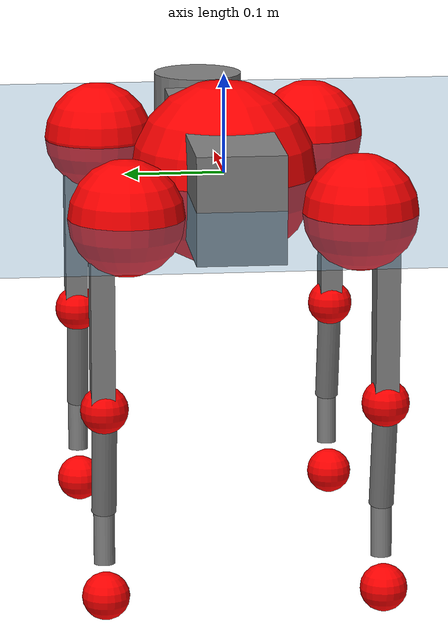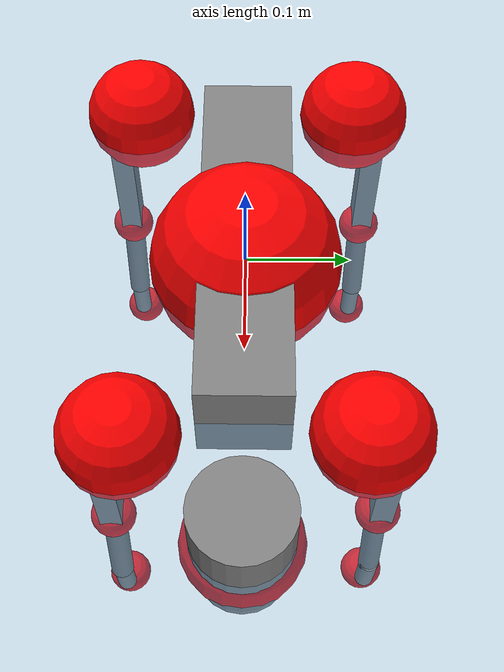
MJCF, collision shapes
<mujoco model="go2">
  <compiler angle="radian" assetdir="assets" balanceinertia="true" inertiafromgeom="false"/>

  <option timestep="0.005" density="1.2" viscosity="2e-05"/>

  <size nkey="1"/>

  <visual>
    <quality shadowsize="8192"/>
    <map shadowclip="0.5"/>
  </visual>

  <default>
    <default class="/">
      <geom contype="0" conaffinity="0" group="1" solref="-1000 -80"/>
      <site size="0.01 0.005 0.005" group="5"/>
      <general forcelimited="true" biastype="affine" gainprm="20" biasprm="0 -20 -0.5"/>
      <default class="go2">
        <joint armature="0.01" damping="0.01" frictionloss="0.2"/>
        <geom condim="1" margin="0.001"/>
        <default class="visual">
          <geom type="mesh" group="2"/>
        </default>
        <default class="collision">
          <geom group="3"/>
          <default class="foot">
            <geom size="0.022 0 0" condim="6" priority="1" friction="0.8 0.02 0.01" solimp="0.015 1 0.022"/>
          </default>
        </default>
        <default class="reward_collision_sphere">
          <geom group="5" rgba="1 0 0 1"/>
        </default>
      </default>
    </default>
  </default>

  <asset>
    <texture type="skybox" colorspace="auto" name="//unnamed_texture_0" builtin="gradient" rgb1="0.95 0.95 0.95" rgb2="0.95 0.95 0.95" width="100" height="600"/>
    <texture type="2d" colorspace="auto" name="texplane" builtin="checker" rgb1="0.345 0.575 0.748" rgb2="0.345 0.575 0.748" markrgb="1 1 1" width="512" height="512"/>
    <material name="MatPlane" class="/" texture="texplane" texuniform="true" texrepeat="2 2" specular="0.9"/>
    <material name="metal" class="/" rgba="0.9 0.95 0.95 1"/>
    <material name="black" class="/" rgba="0 0 0 1"/>
    <material name="white" class="/"/>
    <material name="gray" class="/" rgba="0.671705 0.692426 0.77427 1"/>
    <mesh name="base_0" class="/" file="base_0.obj"/>
    <mesh name="base_1" class="/" file="base_1.obj"/>
    <mesh name="base_2" class="/" file="base_2.obj"/>
    <mesh name="base_3" class="/" file="base_3.obj"/>
    <mesh name="base_4" class="/" file="base_4.obj"/>
    <mesh name="hip_0" class="/" file="hip_0.obj"/>
    <mesh name="hip_1" class="/" file="hip_1.obj"/>
    <mesh name="thigh_0" class="/" file="thigh_0.obj"/>
    <mesh name="thigh_1" class="/" file="thigh_1.obj"/>
    <mesh name="thigh_mirror_0" class="/" file="thigh_mirror_0.obj"/>
    <mesh name="thigh_mirror_1" class="/" file="thigh_mirror_1.obj"/>
    <mesh name="calf_0" class="/" file="calf_0.obj"/>
    <mesh name="calf_1" class="/" file="calf_1.obj"/>
    <mesh name="calf_mirror_0" class="/" file="calf_mirror_0.obj"/>
    <mesh name="calf_mirror_1" class="/" file="calf_mirror_1.obj"/>
    <mesh name="foot" class="/" file="foot.obj"/>
  </asset>

  <worldbody>
    <geom name="floor" class="/" size="100 100 0.125" type="plane" group="0" material="MatPlane"/>
    <light name="toplight_shadow" class="/" pos="0 0 5" dir="0.0990148 0.0990148 -0.990148" type="directional" ambient="0.04 0.04 0.04" diffuse="0.55 0.55 0.55" specular="0.12 0.12 0.12"/>
    <light name="toplight_fill" class="/" pos="0 0 5" dir="0.0990148 0.0990148 -0.990148" type="directional" castshadow="false" ambient="0.04 0.04 0.04" diffuse="0.3 0.3 0.3" specular="0.08 0.08 0.08"/>
    <body name="trunk" childclass="go2" pos="0.000148572 0.000564552 -0.000234605" quat="1 1.5798e-06 2.8968e-06 1.04891e-05">
      <inertial pos="0.0202435 0.000293739 -0.00490428" quat="0.00197386 0.716904 -0.00287903 0.697164" mass="5.72241" diaginertia="0.0925167 0.0806361 0.0128814"/>
      <joint name="//unnamed_joint_0" type="free" armature="0" damping="0" frictionloss="0"/>
      <geom name="//unnamed_geom_1" class="visual" material="black" mesh="base_0"/>
      <geom name="//unnamed_geom_2" class="visual" material="black" mesh="base_1"/>
      <geom name="//unnamed_geom_3" class="visual" material="black" mesh="base_2"/>
      <geom name="//unnamed_geom_4" class="visual" material="white" mesh="base_3"/>
      <geom name="//unnamed_geom_5" class="visual" material="gray" mesh="base_4"/>
      <geom name="trunk_1" class="collision" size="0.176036 0.0437516 0.0533442" type="box"/>
      <geom name="trunk_2" class="collision" size="0.0467932 0.0421138" pos="0.276205 0 0.00879414" type="cylinder"/>
      <geom name="trunk_3" class="collision" size="0.0439856" pos="0.283958 0 -0.0527648"/>
      <geom name="//unnamed_geom_9" class="reward_collision_sphere" size="0.0935863"/>
      <geom name="//unnamed_geom_10" class="reward_collision_sphere" size="0.0561518" pos="0.271359 0 -0.0395736"/>
      <site name="imu" pos="-0.0280617 -0.00447196 0.0400628" size="0.00935863"/>
      <camera name="track" pos="0 -1.91807 0" quat="0.707107 0.707107 0 0" mode="trackcom"/>
      <camera name="ego_camera" pos="0.302372 0 0.0395736" quat="-0.5 -0.5 0.5 0.5"/>
      <body name="FL_hip" pos="0.185931 0.0459243 0.00213004" quat="1 -0.000135634 5.16969e-05 8.669e-06">
        <inertial pos="-0.00541328 0.00207023 -0.000991684" quat="0.497234 0.499588 0.505129 0.49801" mass="0.559065" diaginertia="0.00075535 0.00048976 0.000253851"/>
        <joint name="FL_hip_joint" pos="0 0 0" axis="0.999989 -0.00384759 0.00262085" stiffness="0.00457416" range="-1.02598 1.03351" armature="0.00952475" damping="0.0049583" frictionloss="0.179166"/>
        <geom name="//unnamed_geom_11" class="visual" material="metal" mesh="hip_0"/>
        <geom name="//unnamed_geom_12" class="visual" material="gray" mesh="hip_1"/>
        <geom name="//unnamed_geom_13" class="collision" size="0.0430497 0.0187173" pos="0 0.0767227 0" quat="0.707107 0.707107 0 0" type="cylinder"/>
        <geom name="//unnamed_geom_14" class="reward_collision_sphere" size="0.0561518" pos="0 0.0671324 0"/>
        <body name="FL_thigh" pos="-0.00109007 0.0923937 0.0015755" quat="1 -0.000177699 -0.000188128 0.000371828">
          <inertial pos="-0.0047719 -0.0220931 -0.028209" quat="0.829734 0.0846213 -0.0202914 0.551333" mass="0.943723" diaginertia="0.00506104 0.00472874 0.000459748"/>
          <joint name="FL_thigh_joint" pos="0 0 0" axis="0.000577463 0.999997 -0.00254617" stiffness="0.00515084" range="-1.58407 3.50142" armature="0.00918539" damping="0.0100784" frictionloss="0.185539"/>
          <geom name="//unnamed_geom_15" class="visual" material="metal" mesh="thigh_0"/>
          <geom name="//unnamed_geom_16" class="visual" material="gray" mesh="thigh_1"/>
          <geom name="//unnamed_geom_17" class="collision" size="0.0996694 0.0114643 0.0159097" pos="0 0 -0.0936576" quat="0.707107 0 0.707107 0" type="box"/>
          <body name="FL_calf" pos="-0.00128884 -0.00117783 -0.187109" quat="1 -0.000317595 0.000190229 0.000193954">
            <inertial pos="0.00532547 -0.000569118 -0.124804" quat="0.710894 0.00200803 -0.00398512 0.703285" mass="0.197372" diaginertia="0.00128189 0.00119331 2.768e-05"/>
            <joint name="FL_calf_joint" pos="0 0 0" axis="0.00131196 0.999983 0.00567567" stiffness="0.00126475" range="-2.74045 -0.836388" armature="0.00980993" damping="0.00096155" frictionloss="0.186246"/>
            <geom name="//unnamed_geom_18" class="visual" material="gray" mesh="calf_0"/>
            <geom name="//unnamed_geom_19" class="visual" material="black" mesh="calf_1"/>
            <geom name="FL_calf0" class="collision" size="0.0112304 0.0561518" pos="0.00775313 0 -0.0527648" quat="0.994493 0 -0.104807 0" type="cylinder"/>
            <geom name="//unnamed_geom_21" class="collision" size="0.0102945 0.0304156" pos="0.0193828 0 -0.130153" quat="0.999688 0 0.0249974 0" type="cylinder"/>
            <geom name="//unnamed_geom_22" class="visual" pos="0 0 -0.187315" quat="1 0 0 0" material="black" mesh="foot"/>
            <geom name="FL_foot" class="foot" size="0.0183502" pos="-0.00193828 0 -0.187315"/>
            <geom name="//unnamed_geom_24" class="reward_collision_sphere" size="0.0233966"/>
            <geom name="//unnamed_geom_25" class="reward_collision_sphere" size="0.0233966" pos="-0.00193828 0 -0.187315"/>
            <site name="FL_foot" class="foot" pos="-0.00193828 0 -0.187315" size="0.00935863"/>
          </body>
        </body>
      </body>
      <body name="FR_hip" pos="0.188475 -0.0431108 -0.000109311" quat="1 -3.56654e-05 -0.000127309 8.6385e-05">
        <inertial pos="-0.00524639 -0.00141296 -0.000179362" quat="0.497114 0.505887 0.499093 0.497858" mass="0.554129" diaginertia="0.000751503 0.000475135 0.000250155"/>
        <joint name="FR_hip_joint" pos="0 0 0" axis="0.999983 -0.00374463 -0.00456413" stiffness="0.00581333" range="-1.04956 1.05622" armature="0.00946072" damping="0.0163672" frictionloss="0.186438"/>
        <geom name="//unnamed_geom_26" class="visual" pos="0 6.93619e-10 2.97508e-08" quat="4.63268e-05 1 0 0" material="metal" mesh="hip_0"/>
        <geom name="//unnamed_geom_27" class="visual" pos="0 1.12444e-09 -7.3585e-08" quat="4.63268e-05 1 0 0" material="gray" mesh="hip_1"/>
        <geom name="//unnamed_geom_28" class="collision" size="0.0430497 0.0187173" pos="0 -0.0767227 0" quat="0.707107 0.707107 0 0" type="cylinder"/>
        <geom name="//unnamed_geom_29" class="reward_collision_sphere" size="0.0561518" pos="0 -0.0671324 0"/>
        <body name="FR_thigh" pos="0.00129491 -0.0905344 0.00072385" quat="1 -3.74813e-05 -0.000373126 5.63077e-05">
          <inertial pos="-0.0037252 0.020672 -0.0283932" quat="0.548232 -0.0189975 0.0867845 0.831594" mass="0.931554" diaginertia="0.00504949 0.00472583 0.000462063"/>
          <joint name="FR_thigh_joint" pos="0 0 0" axis="-5.36138e-05 -1 -0.000164422" range="-3.5034 1.57167" armature="0.0093036" damping="0.015743" frictionloss="0.187675"/>
          <geom name="//unnamed_geom_30" class="visual" material="metal" mesh="thigh_mirror_0"/>
          <geom name="//unnamed_geom_31" class="visual" material="gray" mesh="thigh_mirror_1"/>
          <geom name="//unnamed_geom_32" class="collision" size="0.0996694 0.0114643 0.0159097" pos="0 0 -0.0936576" quat="0.707107 0 0.707107 0" type="box"/>
          <body name="FR_calf" pos="-0.000373002 -9.15029e-05 -0.18624" quat="1 -1.98323e-05 2.59662e-05 -2.87722e-05">
            <inertial pos="0.00552365 0.000765413 -0.125522" quat="0.703605 -0.00616155 0.00580542 0.710541" mass="0.197121" diaginertia="0.00128135 0.00118671 2.79826e-05"/>
            <joint name="FR_calf_joint" pos="0 0 0" axis="-0.00398167 -0.999985 -0.00377074" stiffness="0.000112604" range="0.843338 2.71554" armature="0.00953995" damping="0.0126036" frictionloss="0.188797"/>
            <geom name="//unnamed_geom_33" class="visual" material="gray" mesh="calf_mirror_0"/>
            <geom name="//unnamed_geom_34" class="visual" material="black" mesh="calf_mirror_1"/>
            <geom name="FR_calf0" class="collision" size="0.0121662 0.0561518" pos="0.00969141 0 -0.0527648" quat="0.995004 0 -0.0998334 0" type="cylinder"/>
            <geom name="//unnamed_geom_36" class="collision" size="0.0102945 0.0304156" pos="0.0193828 0 -0.130153" quat="0.999688 0 0.0249974 0" type="cylinder"/>
            <geom name="//unnamed_geom_37" class="visual" pos="0 0 -0.187315" quat="1 0 0 0" material="black" mesh="foot"/>
            <geom name="FR_foot" class="foot" size="0.0222963" pos="-0.00193828 0 -0.187315"/>
            <geom name="//unnamed_geom_39" class="reward_collision_sphere" size="0.0233966"/>
            <geom name="//unnamed_geom_40" class="reward_collision_sphere" size="0.0233966" pos="-0.00193828 0 -0.187315"/>
            <site name="FR_foot" class="foot" pos="-0.00193828 0 -0.187315" size="0.00935863"/>
          </body>
        </body>
      </body>
      <body name="RL_hip" pos="-0.187969 0.0442038 -0.00104298" quat="1 0.000190848 0.000121825 0.000150202">
        <inertial pos="0.00505755 0.00264053 -0.000816756" quat="0.505259 0.497225 0.497507 0.499967" mass="0.554364" diaginertia="0.000751224 0.000480974 0.000251243"/>
        <joint name="RL_hip_joint" pos="0 0 0" axis="-0.999818 -0.0185995 -0.00413138" stiffness="0.00144275" range="-1.03978 1.05809" armature="0.00936297" damping="0.014092" frictionloss="0.191709"/>
        <geom name="//unnamed_geom_41" class="visual" pos="-7.81665e-10 0 -1.53224e-07" quat="4.63268e-05 0 1 0" material="metal" mesh="hip_0"/>
        <geom name="//unnamed_geom_42" class="visual" pos="-1.26717e-09 0 -1.35888e-07" quat="4.63268e-05 0 1 0" material="gray" mesh="hip_1"/>
        <geom name="//unnamed_geom_43" class="collision" size="0.0430497 0.0187173" pos="0 0.0767227 0" quat="0.707107 0.707107 0 0" type="cylinder"/>
        <geom name="//unnamed_geom_44" class="reward_collision_sphere" size="0.0561518" pos="0 0.0671324 0"/>
        <body name="RL_thigh" pos="0.000632468 0.0911233 -0.000960002" quat="1 7.17937e-05 -0.000216124 -0.00014227">
          <inertial pos="-0.00355196 -0.0210351 -0.0291785" quat="0.828258 0.0873372 -0.0232827 0.553008" mass="0.954237" diaginertia="0.00504916 0.00470118 0.000462428"/>
          <joint name="RL_thigh_joint" pos="0 0 0" axis="0.00213565 0.999994 -0.00271226" range="-0.510951 4.52076" armature="0.00946949" damping="0.00952335" frictionloss="0.18941"/>
          <geom name="//unnamed_geom_45" class="visual" material="metal" mesh="thigh_0"/>
          <geom name="//unnamed_geom_46" class="visual" material="gray" mesh="thigh_1"/>
          <geom name="//unnamed_geom_47" class="collision" size="0.0996694 0.0114643 0.0159097" pos="0 0 -0.0936576" quat="0.707107 0 0.707107 0" type="box"/>
          <body name="RL_calf" pos="0.000790465 -0.00164966 -0.187546" quat="1 -4.86825e-06 -8.27787e-05 -0.000115528">
            <inertial pos="0.00635615 -0.000541462 -0.124483" quat="0.71042 0.000584982 -0.0036876 0.703768" mass="0.193323" diaginertia="0.00125839 0.00117774 2.76631e-05"/>
            <joint name="RL_calf_joint" pos="0 0 0" axis="-0.00971674 0.999943 -0.0043951" range="-2.70604 -0.824032" armature="0.00935649" damping="0.00102635" frictionloss="0.185354"/>
            <geom name="//unnamed_geom_48" class="visual" material="gray" mesh="calf_0"/>
            <geom name="//unnamed_geom_49" class="visual" material="black" mesh="calf_1"/>
            <geom name="RL_calf0" class="collision" size="0.0121662 0.0561518" pos="0.00969141 0 -0.0527648" quat="0.995004 0 -0.0998334 0" type="cylinder"/>
            <geom name="//unnamed_geom_51" class="collision" size="0.0102945 0.0304156" pos="0.0193828 0 -0.130153" quat="0.999688 0 0.0249974 0" type="cylinder"/>
            <geom name="//unnamed_geom_52" class="visual" pos="0 0 -0.187315" quat="1 0 0 0" material="black" mesh="foot"/>
            <geom name="RL_foot" class="foot" size="0.0176404" pos="-0.00193828 0 -0.187315"/>
            <geom name="//unnamed_geom_54" class="reward_collision_sphere" size="0.0233966"/>
            <geom name="//unnamed_geom_55" class="reward_collision_sphere" size="0.0233966" pos="-0.00193828 0 -0.187315"/>
            <site name="RL_foot" class="foot" pos="-0.00193828 0 -0.187315" size="0.00935863"/>
          </body>
        </body>
      </body>
      <body name="RR_hip" pos="-0.186616 -0.0452945 -0.000312586" quat="1 7.0525e-06 -6.32652e-05 -4.03448e-05">
        <inertial pos="0.00564097 -0.00206182 0.000942465" quat="0.497359 0.497982 0.498323 0.506283" mass="0.548216" diaginertia="0.000741263 0.000476868 0.000250628"/>
        <joint name="RR_hip_joint" pos="0 0 0" axis="-0.999998 -0.00111246 -0.0017361" range="-1.04736 1.04347" armature="0.00935378" damping="0.00701202" frictionloss="0.186055"/>
        <geom name="//unnamed_geom_56" class="visual" pos="7.81315e-10 6.93619e-10 -1.82975e-07" quat="2.14617e-09 4.63268e-05 4.63268e-05 -1" material="metal" mesh="hip_0"/>
        <geom name="//unnamed_geom_57" class="visual" pos="1.26804e-09 1.12444e-09 -6.23031e-08" quat="2.14617e-09 4.63268e-05 4.63268e-05 -1" material="gray" mesh="hip_1"/>
        <geom name="//unnamed_geom_58" class="collision" size="0.0430497 0.0187173" pos="0 -0.0767227 0" quat="0.707107 0.707107 0 0" type="cylinder"/>
        <geom name="//unnamed_geom_59" class="reward_collision_sphere" size="0.0561518" pos="0 -0.0671324 0"/>
        <body name="RR_thigh" pos="0.000452598 -0.092645 -0.00164351" quat="1 2.89678e-05 4.20929e-05 -7.17267e-06">
          <inertial pos="-0.00336889 0.021286 -0.029723" quat="0.551302 -0.0224548 0.0854466 0.829615" mass="0.952433" diaginertia="0.00512783 0.0047931 0.000467316"/>
          <joint name="RR_thigh_joint" pos="0 0 0" axis="0.00191628 -0.999996 -0.00207522" stiffness="0.0021642" range="-4.53356 0.505992" armature="0.00951405" damping="0.0128589" frictionloss="0.191266"/>
          <geom name="//unnamed_geom_60" class="visual" material="metal" mesh="thigh_mirror_0"/>
          <geom name="//unnamed_geom_61" class="visual" material="gray" mesh="thigh_mirror_1"/>
          <geom name="//unnamed_geom_62" class="collision" size="0.0996694 0.0114643 0.0159097" pos="0 0 -0.0936576" quat="0.707107 0 0.707107 0" type="box"/>
          <body name="RR_calf" pos="-0.000860879 -0.000480532 -0.188195" quat="1 0.000181766 -0.000318629 -0.000277795">
            <inertial pos="0.00709779 0.000692546 -0.124977" quat="0.702915 -0.00536645 0.00193467 0.711251" mass="0.199062" diaginertia="0.00128091 0.00118641 2.81904e-05"/>
            <joint name="RR_calf_joint" pos="0 0 0" axis="-0.00254812 -0.999994 0.00235471" stiffness="0.00138067" range="0.848193 2.73362" armature="0.0092598" damping="0.0100628" frictionloss="0.188052"/>
            <geom name="//unnamed_geom_63" class="visual" material="gray" mesh="calf_mirror_0"/>
            <geom name="//unnamed_geom_64" class="visual" material="black" mesh="calf_mirror_1"/>
            <geom name="RR_calf0" class="collision" size="0.0121662 0.0561518" pos="0.00969141 0 -0.0527648" quat="0.995004 0 -0.0998334 0" type="cylinder"/>
            <geom name="//unnamed_geom_66" class="collision" size="0.0102945 0.0304156" pos="0.0193828 0 -0.130153" quat="0.999688 0 0.0249974 0" type="cylinder"/>
            <geom name="//unnamed_geom_67" class="visual" pos="0 0 -0.187315" quat="1 0 0 0" material="black" mesh="foot"/>
            <geom name="RR_foot" class="foot" size="0.0214578" pos="-0.00193828 0 -0.187315"/>
            <geom name="//unnamed_geom_69" class="reward_collision_sphere" size="0.0233966"/>
            <geom name="//unnamed_geom_70" class="reward_collision_sphere" size="0.0233966" pos="-0.00193828 0 -0.187315"/>
            <site name="RR_foot" class="foot" pos="-0.00193828 0 -0.187315" size="0.00935863"/>
          </body>
        </body>
      </body>
    </body>
  </worldbody>

  <contact>
    <pair class="/" geom1="floor" geom2="FL_foot" name="//unnamed_contact_0"/>
    <pair class="/" geom1="floor" geom2="FR_foot" name="//unnamed_contact_1"/>
    <pair class="/" geom1="floor" geom2="RL_foot" name="//unnamed_contact_2"/>
    <pair class="/" geom1="floor" geom2="RR_foot" name="//unnamed_contact_3"/>
  </contact>

  <actuator>
    <general name="FL_hip" class="/" joint="FL_hip_joint" forcerange="-22.9954 22.9954" gainprm="19.0323" biasprm="0 -19.0323 -0.470108"/>
    <general name="FL_thigh" class="/" joint="FL_thigh_joint" forcerange="-22.9741 22.9741" gainprm="19.0323" biasprm="0 -19.0323 -0.470108"/>
    <general name="FL_calf" class="/" joint="FL_calf_joint" forcerange="-41.8314 41.8314" gainprm="19.0323" biasprm="0 -19.0323 -0.470108"/>
    <general name="FR_hip" class="/" joint="FR_hip_joint" forcerange="-22.5117 22.5117" gainprm="19.0323" biasprm="0 -19.0323 -0.470108"/>
    <general name="FR_thigh" class="/" joint="FR_thigh_joint" forcerange="-22.5441 22.5441" gainprm="19.0323" biasprm="0 -19.0323 -0.470108"/>
    <general name="FR_calf" class="/" joint="FR_calf_joint" forcerange="-41.018 41.018" gainprm="19.0323" biasprm="0 -19.0323 -0.470108"/>
    <general name="RL_hip" class="/" joint="RL_hip_joint" forcerange="-21.7879 21.7879" gainprm="19.0323" biasprm="0 -19.0323 -0.470108"/>
    <general name="RL_thigh" class="/" joint="RL_thigh_joint" forcerange="-22.4479 22.4479" gainprm="19.0323" biasprm="0 -19.0323 -0.470108"/>
    <general name="RL_calf" class="/" joint="RL_calf_joint" forcerange="-43.8846 43.8846" gainprm="19.0323" biasprm="0 -19.0323 -0.470108"/>
    <general name="RR_hip" class="/" joint="RR_hip_joint" forcerange="-21.5514 21.5514" gainprm="19.0323" biasprm="0 -19.0323 -0.470108"/>
    <general name="RR_thigh" class="/" joint="RR_thigh_joint" forcerange="-22.0641 22.0641" gainprm="19.0323" biasprm="0 -19.0323 -0.470108"/>
    <general name="RR_calf" class="/" joint="RR_calf_joint" forcerange="-42.4791 42.4791" gainprm="19.0323" biasprm="0 -19.0323 -0.470108"/>
  </actuator>

  <sensor>
    <gyro site="imu" name="imu_angular_velocity"/>
    <velocimeter site="imu" name="imu_linear_velocity"/>
    <framelinvel objtype="site" objname="FL_foot" name="FL_foot_global_linear_velocity"/>
    <framelinvel objtype="site" objname="FR_foot" name="FR_foot_global_linear_velocity"/>
    <framelinvel objtype="site" objname="RL_foot" name="RL_foot_global_linear_velocity"/>
    <framelinvel objtype="site" objname="RR_foot" name="RR_foot_global_linear_velocity"/>
  </sensor>

  <keyframe>
    <key name="home" qpos="0 0 0.325 1 0 0 0 0.1 0.8 -1.5 -0.1 -0.8 1.5 -0.1 0.8 -1.5 0.1 -0.8 1.5"/>
  </keyframe>
</mujoco>
